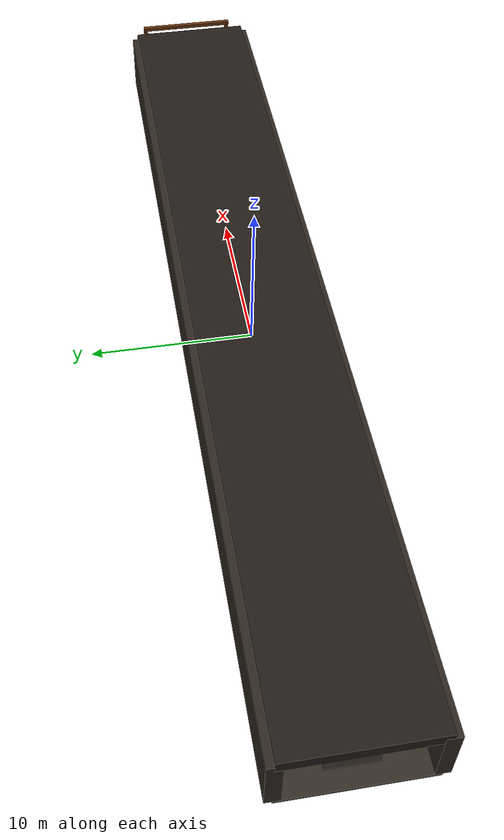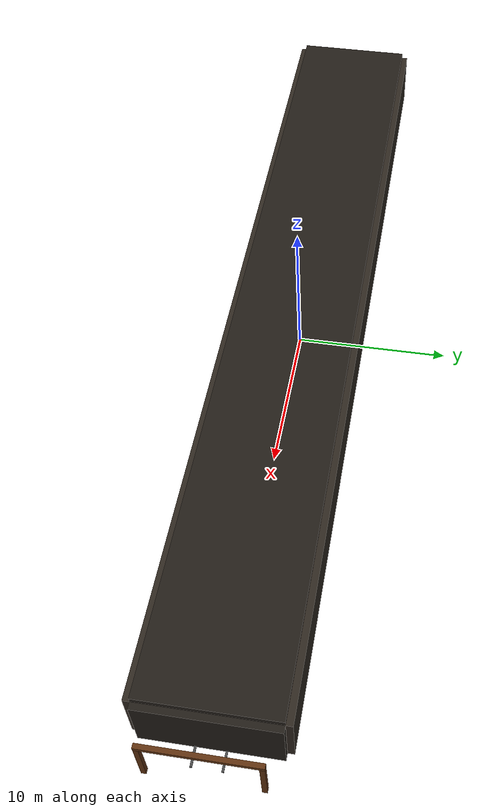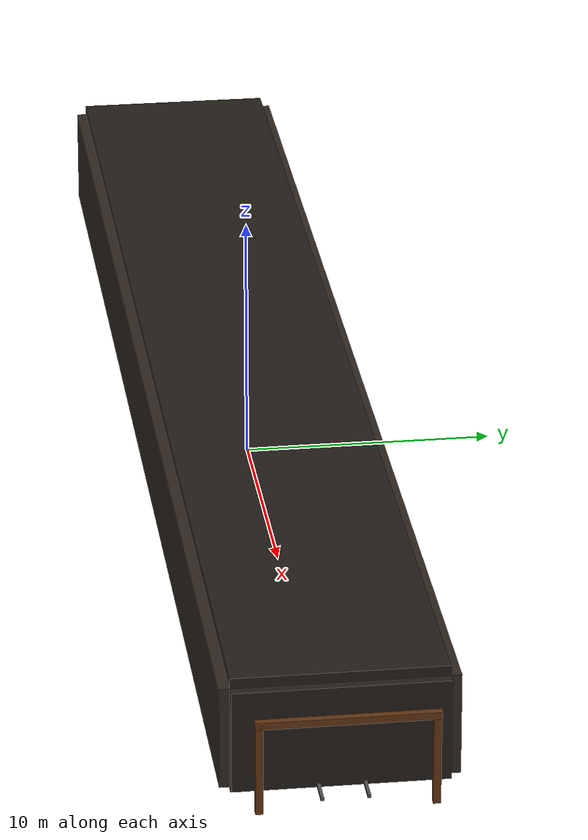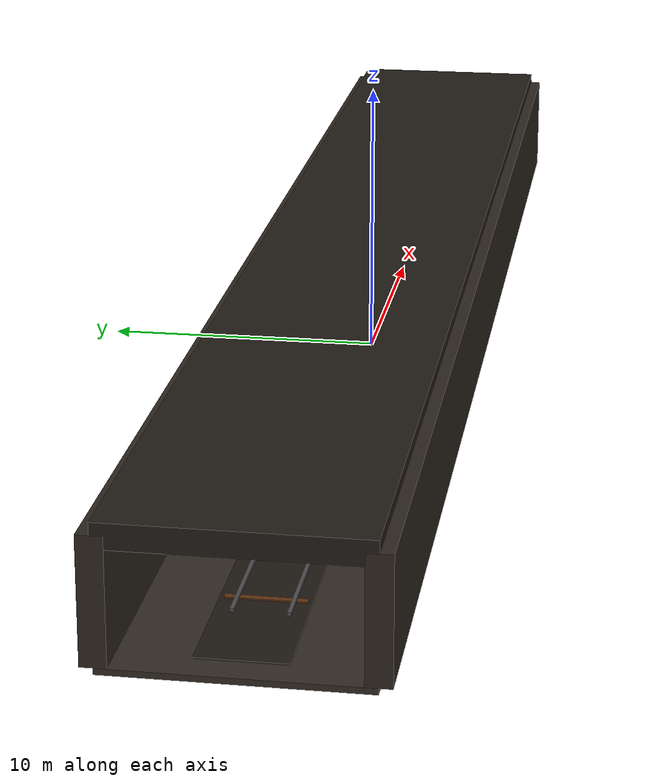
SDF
<?xml version='1.0' encoding='utf-8'?>
<sdf version="1.9">
  <world name="vajra_mine">

    <gravity>0 0 -9.81</gravity>

    <plugin filename="gz-sim-physics-system" name="gz::sim::systems::Physics" />
    <plugin filename="gz-sim-user-commands-system" name="gz::sim::systems::UserCommands" />
    <plugin filename="gz-sim-scene-broadcaster-system" name="gz::sim::systems::SceneBroadcaster" />

    <light name="light_1" type="point">
      <pose>-20 0 3.2 0 0 0</pose>
      <diffuse>0.65 0.52 0.34 1</diffuse>
      <attenuation>
        <range>10</range>
        <constant>0.8</constant>
        <linear>0.1</linear>
        <quadratic>0.03</quadratic>
      </attenuation>
    </light>

    <light name="light_2" type="point">
      <pose>-8 0 3.2 0 0 0</pose>
      <diffuse>0.65 0.52 0.34 1</diffuse>
      <attenuation>
        <range>10</range>
        <constant>0.8</constant>
        <linear>0.1</linear>
        <quadratic>0.03</quadratic>
      </attenuation>
    </light>

    <light name="light_3" type="point">
      <pose>4 0 3.2 0 0 0</pose>
      <diffuse>0.65 0.52 0.34 1</diffuse>
      <attenuation>
        <range>10</range>
        <constant>0.8</constant>
        <linear>0.1</linear>
        <quadratic>0.03</quadratic>
      </attenuation>
    </light>

    <light name="light_4" type="point">
      <pose>16 0 3.2 0 0 0</pose>
      <diffuse>0.65 0.52 0.34 1</diffuse>
      <attenuation>
        <range>10</range>
        <constant>0.8</constant>
        <linear>0.1</linear>
        <quadratic>0.03</quadratic>
      </attenuation>
    </light>

    <light name="light_5" type="point">
      <pose>28 0 3.2 0 0 0</pose>
      <diffuse>0.65 0.52 0.34 1</diffuse>
      <attenuation>
        <range>10</range>
        <constant>0.8</constant>
        <linear>0.1</linear>
        <quadratic>0.03</quadratic>
      </attenuation>
    </light>

    <model name="mine_floor">
      <static>true</static>

      <link name="link">

        <collision name="collision">
          <pose>0 0 -0.10 0 0 0</pose>
          <geometry>
            <box>
              <size>56 8 0.20</size>
            </box>
          </geometry>
        </collision>

        <visual name="visual">
          <pose>0 0 -0.10 0 0 0</pose>
          <geometry>
            <box>
              <size>56 8 0.20</size>
            </box>
          </geometry>

          <material>
            <ambient>0.12 0.10 0.08 1</ambient>
            <diffuse>0.20 0.17 0.14 1</diffuse>
          </material>
        </visual>

      </link>
    </model>

    <model name="left_wall">
      <static>true</static>

      <link name="link">

        <collision name="collision">
          <pose>0 4.0 2.0 0 0 0</pose>
          <geometry>
            <box>
              <size>56 0.8 4</size>
            </box>
          </geometry>
        </collision>

        <visual name="visual">
          <pose>0 4.0 2.0 0 0 0</pose>
          <geometry>
            <box>
              <size>56 0.8 4</size>
            </box>
          </geometry>

          <material>
            <ambient>0.07 0.06 0.05 1</ambient>
            <diffuse>0.18 0.15 0.12 1</diffuse>
          </material>
        </visual>

      </link>
    </model>

    <model name="right_wall">
      <static>true</static>

      <link name="link">

        <collision name="collision">
          <pose>0 -4.0 2.0 0 0 0</pose>
          <geometry>
            <box>
              <size>56 0.8 4</size>
            </box>
          </geometry>
        </collision>

        <visual name="visual">
          <pose>0 -4.0 2.0 0 0 0</pose>
          <geometry>
            <box>
              <size>56 0.8 4</size>
            </box>
          </geometry>

          <material>
            <ambient>0.07 0.06 0.05 1</ambient>
            <diffuse>0.18 0.15 0.12 1</diffuse>
          </material>
        </visual>

      </link>
    </model>

    <model name="rock_ceiling">
      <static>true</static>

      <link name="link">

        <collision name="collision">
          <pose>0 0 4.0 0 0 0</pose>
          <geometry>
            <box>
              <size>56 8 0.8</size>
            </box>
          </geometry>
        </collision>

        <visual name="visual">
          <pose>0 0 4.0 0 0 0</pose>
          <geometry>
            <box>
              <size>56 8 0.8</size>
            </box>
          </geometry>

          <material>
            <ambient>0.055 0.045 0.04 1</ambient>
            <diffuse>0.13 0.11 0.09 1</diffuse>
          </material>
        </visual>

      </link>
    </model>

    <model name="track_bed">
      <static>true</static>

      <link name="link">

        <visual name="visual">
          <pose>0 0 0.015 0 0 0</pose>
          <geometry>
            <box>
              <size>54 2.8 0.05</size>
            </box>
          </geometry>

          <material>
            <ambient>0.08 0.07 0.055 1</ambient>
            <diffuse>0.12 0.10 0.08 1</diffuse>
          </material>
        </visual>

      </link>
    </model>

    <model name="left_rail">

      <static>true</static>

      <link name="link">

        <visual name="section_1">
          <pose>-20 0.85 0.09 0 0 0</pose>
          <geometry>
            <box>
              <size>8 0.12 0.12</size>
            </box>
          </geometry>
          <material>
            <ambient>0.12 0.12 0.12 1</ambient>
            <diffuse>0.30 0.30 0.30 1</diffuse>
          </material>
        </visual>

        <visual name="section_2">
          <pose>-9 0.85 0.09 0 0 0</pose>
          <geometry>
            <box>
              <size>9 0.12 0.12</size>
            </box>
          </geometry>
          <material>
            <ambient>0.12 0.12 0.12 1</ambient>
            <diffuse>0.30 0.30 0.30 1</diffuse>
          </material>
        </visual>

        <visual name="section_3">
          <pose>3 0.85 0.09 0 0 0</pose>
          <geometry>
            <box>
              <size>8 0.12 0.12</size>
            </box>
          </geometry>
          <material>
            <ambient>0.12 0.12 0.12 1</ambient>
            <diffuse>0.30 0.30 0.30 1</diffuse>
          </material>
        </visual>

        <visual name="section_4">
          <pose>14 0.85 0.09 0 0 0</pose>
          <geometry>
            <box>
              <size>7 0.12 0.12</size>
            </box>
          </geometry>
          <material>
            <ambient>0.12 0.12 0.12 1</ambient>
            <diffuse>0.30 0.30 0.30 1</diffuse>
          </material>
        </visual>

        <visual name="section_5">
          <pose>25 0.85 0.09 0 0 0</pose>
          <geometry>
            <box>
              <size>9 0.12 0.12</size>
            </box>
          </geometry>
          <material>
            <ambient>0.12 0.12 0.12 1</ambient>
            <diffuse>0.30 0.30 0.30 1</diffuse>
          </material>
        </visual>

      </link>
    </model>

    <model name="right_rail">

      <static>true</static>

      <link name="link">

        <visual name="section_1">
          <pose>-20 -0.85 0.09 0 0 0</pose>
          <geometry>
            <box>
              <size>8 0.12 0.12</size>
            </box>
          </geometry>
          <material>
            <ambient>0.12 0.12 0.12 1</ambient>
            <diffuse>0.30 0.30 0.30 1</diffuse>
          </material>
        </visual>

        <visual name="section_2">
          <pose>-9 -0.85 0.09 0 0 0</pose>
          <geometry>
            <box>
              <size>9 0.12 0.12</size>
            </box>
          </geometry>
          <material>
            <ambient>0.12 0.12 0.12 1</ambient>
            <diffuse>0.30 0.30 0.30 1</diffuse>
          </material>
        </visual>

        <visual name="section_3">
          <pose>3 -0.85 0.09 0 0 0</pose>
          <geometry>
            <box>
              <size>8 0.12 0.12</size>
            </box>
          </geometry>
          <material>
            <ambient>0.12 0.12 0.12 1</ambient>
            <diffuse>0.30 0.30 0.30 1</diffuse>
          </material>
        </visual>

        <visual name="section_4">
          <pose>14 -0.85 0.09 0 0 0</pose>
          <geometry>
            <box>
              <size>7 0.12 0.12</size>
            </box>
          </geometry>
          <material>
            <ambient>0.12 0.12 0.12 1</ambient>
            <diffuse>0.30 0.30 0.30 1</diffuse>
          </material>
        </visual>

        <visual name="section_5">
          <pose>25 -0.85 0.09 0 0 0</pose>
          <geometry>
            <box>
              <size>9 0.12 0.12</size>
            </box>
          </geometry>
          <material>
            <ambient>0.12 0.12 0.12 1</ambient>
            <diffuse>0.30 0.30 0.30 1</diffuse>
          </material>
        </visual>

      </link>
    </model>

    <model name="wooden_sleepers">
      <static>true</static>

      <link name="link">

        <visual name="s01">
          <pose>-23 0 0.035 0 0 0</pose>
          <geometry><box><size>0.22 2.5 0.10</size></box></geometry>
          <material><ambient>0.25 0.12 0.04 1</ambient><diffuse>0.38 0.20 0.07 1</diffuse></material>
        </visual>

        <visual name="s02">
          <pose>-20 0 0.035 0 0 0</pose>
          <geometry><box><size>0.22 2.5 0.10</size></box></geometry>
          <material><ambient>0.25 0.12 0.04 1</ambient><diffuse>0.38 0.20 0.07 1</diffuse></material>
        </visual>

        <visual name="s03">
          <pose>-17 0 0.035 0 0 0</pose>
          <geometry><box><size>0.22 2.5 0.10</size></box></geometry>
          <material><ambient>0.25 0.12 0.04 1</ambient><diffuse>0.38 0.20 0.07 1</diffuse></material>
        </visual>

        <visual name="s04">
          <pose>-14 0 0.035 0 0 0</pose>
          <geometry><box><size>0.22 2.5 0.10</size></box></geometry>
          <material><ambient>0.25 0.12 0.04 1</ambient><diffuse>0.38 0.20 0.07 1</diffuse></material>
        </visual>

        <visual name="s05">
          <pose>-11 0 0.035 0 0 0</pose>
          <geometry><box><size>0.22 2.5 0.10</size></box></geometry>
          <material><ambient>0.25 0.12 0.04 1</ambient><diffuse>0.38 0.20 0.07 1</diffuse></material>
        </visual>

        <visual name="s06">
          <pose>-8 0 0.035 0 0 0</pose>
          <geometry><box><size>0.22 2.5 0.10</size></box></geometry>
          <material><ambient>0.25 0.12 0.04 1</ambient><diffuse>0.38 0.20 0.07 1</diffuse></material>
        </visual>

        <visual name="s07">
          <pose>-5 0 0.035 0 0 0</pose>
          <geometry><box><size>0.22 2.5 0.10</size></box></geometry>
          <material><ambient>0.25 0.12 0.04 1</ambient><diffuse>0.38 0.20 0.07 1</diffuse></material>
        </visual>

        <visual name="s08">
          <pose>-2 0 0.035 0 0 0</pose>
          <geometry><box><size>0.22 2.5 0.10</size></box></geometry>
          <material><ambient>0.25 0.12 0.04 1</ambient><diffuse>0.38 0.20 0.07 1</diffuse></material>
        </visual>

        <visual name="s09">
          <pose>1 0 0.035 0 0 0</pose>
          <geometry><box><size>0.22 2.5 0.10</size></box></geometry>
          <material><ambient>0.25 0.12 0.04 1</ambient><diffuse>0.38 0.20 0.07 1</diffuse></material>
        </visual>

        <visual name="s10">
          <pose>4 0 0.035 0 0 0</pose>
          <geometry><box><size>0.22 2.5 0.10</size></box></geometry>
          <material><ambient>0.25 0.12 0.04 1</ambient><diffuse>0.38 0.20 0.07 1</diffuse></material>
        </visual>

        <visual name="s11">
          <pose>7 0 0.035 0 0 0</pose>
          <geometry><box><size>0.22 2.5 0.10</size></box></geometry>
          <material><ambient>0.25 0.12 0.04 1</ambient><diffuse>0.38 0.20 0.07 1</diffuse></material>
        </visual>

        <visual name="s12">
          <pose>10 0 0.035 0 0 0</pose>
          <geometry><box><size>0.22 2.5 0.10</size></box></geometry>
          <material><ambient>0.25 0.12 0.04 1</ambient><diffuse>0.38 0.20 0.07 1</diffuse></material>
        </visual>

        <visual name="s13">
          <pose>13 0 0.035 0 0 0</pose>
          <geometry><box><size>0.22 2.5 0.10</size></box></geometry>
          <material><ambient>0.25 0.12 0.04 1</ambient><diffuse>0.38 0.20 0.07 1</diffuse></material>
        </visual>

        <visual name="s14">
          <pose>16 0 0.035 0 0 0</pose>
          <geometry><box><size>0.22 2.5 0.10</size></box></geometry>
          <material><ambient>0.25 0.12 0.04 1</ambient><diffuse>0.38 0.20 0.07 1</diffuse></material>
        </visual>

        <visual name="s15">
          <pose>19 0 0.035 0 0 0</pose>
          <geometry><box><size>0.22 2.5 0.10</size></box></geometry>
          <material><ambient>0.25 0.12 0.04 1</ambient><diffuse>0.38 0.20 0.07 1</diffuse></material>
        </visual>

        <visual name="s16">
          <pose>22 0 0.035 0 0 0</pose>
          <geometry><box><size>0.22 2.5 0.10</size></box></geometry>
          <material><ambient>0.25 0.12 0.04 1</ambient><diffuse>0.38 0.20 0.07 1</diffuse></material>
        </visual>

        <visual name="s17">
          <pose>25 0 0.035 0 0 0</pose>
          <geometry><box><size>0.22 2.5 0.10</size></box></geometry>
          <material><ambient>0.25 0.12 0.04 1</ambient><diffuse>0.38 0.20 0.07 1</diffuse></material>
        </visual>

        <visual name="s18">
          <pose>28 0 0.035 0 0 0</pose>
          <geometry><box><size>0.22 2.5 0.10</size></box></geometry>
          <material><ambient>0.25 0.12 0.04 1</ambient><diffuse>0.38 0.20 0.07 1</diffuse></material>
        </visual>

      </link>
    </model>

    <model name="obstacle_left_1">
      <static>true</static>
      <pose>-3 2.7 0.45 0 0 0.25</pose>

      <link name="link">

        <collision name="collision">
          <geometry>
            <box>
              <size>2.5 1.4 0.9</size>
            </box>
          </geometry>
        </collision>

        <visual name="visual">
          <geometry>
            <box>
              <size>2.5 1.4 0.9</size>
            </box>
          </geometry>

          <material>
            <ambient>0.20 0.17 0.14 1</ambient>
            <diffuse>0.30 0.25 0.20 1</diffuse>
          </material>
        </visual>

      </link>
    </model>

    <model name="obstacle_right_1">
      <static>true</static>
      <pose>9 -2.7 0.55 0 0 0.4</pose>

      <link name="link">

        <collision name="collision">
          <geometry>
            <box>
              <size>2.7 1.5 1.1</size>
            </box>
          </geometry>
        </collision>

        <visual name="visual">
          <geometry>
            <box>
              <size>2.7 1.5 1.1</size>
            </box>
          </geometry>

          <material>
            <ambient>0.20 0.17 0.14 1</ambient>
            <diffuse>0.30 0.25 0.20 1</diffuse>
          </material>
        </visual>

      </link>
    </model>

    <model name="rockfall_left">
      <static>true</static>
      <pose>19 2.5 0.35 0 0 0.2</pose>

      <link name="link">

        <collision name="collision">
          <geometry>
            <box>
              <size>3.0 1.5 0.7</size>
            </box>
          </geometry>
        </collision>

        <visual name="visual">
          <geometry>
            <box>
              <size>3.0 1.5 0.7</size>
            </box>
          </geometry>

          <material>
            <ambient>0.16 0.14 0.12 1</ambient>
            <diffuse>0.25 0.21 0.18 1</diffuse>
          </material>
        </visual>

      </link>
    </model>

    <model name="rockfall_right">
      <static>true</static>
      <pose>24 -2.5 0.40 0 0 0.5</pose>

      <link name="link">

        <collision name="collision">
          <geometry>
            <box>
              <size>3.0 1.5 0.8</size>
            </box>
          </geometry>
        </collision>

        <visual name="visual">
          <geometry>
            <box>
              <size>3.0 1.5 0.8</size>
            </box>
          </geometry>

          <material>
            <ambient>0.16 0.14 0.12 1</ambient>
            <diffuse>0.25 0.21 0.18 1</diffuse>
          </material>
        </visual>

      </link>
    </model>

    <model name="support_1">
      <static>true</static>

      <link name="link">

        <visual name="left_post">
          <pose>-15 3.2 1.8 0 0 0</pose>
          <geometry><box><size>0.28 0.28 3.6</size></box></geometry>
          <material>
            <ambient>0.24 0.12 0.04 1</ambient>
            <diffuse>0.38 0.20 0.07 1</diffuse>
          </material>
        </visual>

        <visual name="right_post">
          <pose>-15 -3.2 1.8 0 0 0</pose>
          <geometry><box><size>0.28 0.28 3.6</size></box></geometry>
          <material>
            <ambient>0.24 0.12 0.04 1</ambient>
            <diffuse>0.38 0.20 0.07 1</diffuse>
          </material>
        </visual>

        <visual name="beam">
          <pose>-15 0 3.55 0 0 0</pose>
          <geometry><box><size>0.28 6.7 0.28</size></box></geometry>
          <material>
            <ambient>0.24 0.12 0.04 1</ambient>
            <diffuse>0.38 0.20 0.07 1</diffuse>
          </material>
        </visual>

      </link>
    </model>

    <model name="support_2">
      <static>true</static>

      <link name="link">

        <visual name="left_post">
          <pose>0 3.2 1.8 0 0 0</pose>
          <geometry><box><size>0.28 0.28 3.6</size></box></geometry>
          <material>
            <ambient>0.24 0.12 0.04 1</ambient>
            <diffuse>0.38 0.20 0.07 1</diffuse>
          </material>
        </visual>

        <visual name="right_post">
          <pose>0 -3.2 1.8 0 0 0</pose>
          <geometry><box><size>0.28 0.28 3.6</size></box></geometry>
          <material>
            <ambient>0.24 0.12 0.04 1</ambient>
            <diffuse>0.38 0.20 0.07 1</diffuse>
          </material>
        </visual>

        <visual name="beam">
          <pose>0 0 3.55 0 0 0</pose>
          <geometry><box><size>0.28 6.7 0.28</size></box></geometry>
          <material>
            <ambient>0.24 0.12 0.04 1</ambient>
            <diffuse>0.38 0.20 0.07 1</diffuse>
          </material>
        </visual>

      </link>
    </model>

    <model name="support_3">
      <static>true</static>

      <link name="link">

        <visual name="left_post">
          <pose>15 3.2 1.8 0 0 0</pose>
          <geometry><box><size>0.28 0.28 3.6</size></box></geometry>
          <material>
            <ambient>0.24 0.12 0.04 1</ambient>
            <diffuse>0.38 0.20 0.07 1</diffuse>
          </material>
        </visual>

        <visual name="right_post">
          <pose>15 -3.2 1.8 0 0 0</pose>
          <geometry><box><size>0.28 0.28 3.6</size></box></geometry>
          <material>
            <ambient>0.24 0.12 0.04 1</ambient>
            <diffuse>0.38 0.20 0.07 1</diffuse>
          </material>
        </visual>

        <visual name="beam">
          <pose>15 0 3.55 0 0 0</pose>
          <geometry><box><size>0.28 6.7 0.28</size></box></geometry>
          <material>
            <ambient>0.24 0.12 0.04 1</ambient>
            <diffuse>0.38 0.20 0.07 1</diffuse>
          </material>
        </visual>

      </link>
    </model>

    <model name="support_4">
      <static>true</static>

      <link name="link">

        <visual name="left_post">
          <pose>30 3.2 1.8 0 0 0</pose>
          <geometry><box><size>0.28 0.28 3.6</size></box></geometry>
          <material>
            <ambient>0.24 0.12 0.04 1</ambient>
            <diffuse>0.38 0.20 0.07 1</diffuse>
          </material>
        </visual>

        <visual name="right_post">
          <pose>30 -3.2 1.8 0 0 0</pose>
          <geometry><box><size>0.28 0.28 3.6</size></box></geometry>
          <material>
            <ambient>0.24 0.12 0.04 1</ambient>
            <diffuse>0.38 0.20 0.07 1</diffuse>
          </material>
        </visual>

        <visual name="beam">
          <pose>30 0 3.55 0 0 0</pose>
          <geometry><box><size>0.28 6.7 0.28</size></box></geometry>
          <material>
            <ambient>0.24 0.12 0.04 1</ambient>
            <diffuse>0.38 0.20 0.07 1</diffuse>
          </material>
        </visual>

      </link>
    </model>

    <model name="mine_end">
      <static>true</static>
      <pose>28 0 2 0 0 0</pose>

      <link name="link">

        <collision name="collision">
          <geometry>
            <box>
              <size>0.8 8 4</size>
            </box>
          </geometry>
        </collision>

        <visual name="visual">
          <geometry>
            <box>
              <size>0.8 8 4</size>
            </box>
          </geometry>

          <material>
            <ambient>0.06 0.05 0.04 1</ambient>
            <diffuse>0.13 0.11 0.09 1</diffuse>
          </material>
        </visual>

      </link>
    </model>

    <plugin filename="gz-sim-sensors-system"
            name="gz::sim::systems::Sensors">
      <render_engine>ogre2</render_engine>
    </plugin>

</world>
</sdf>
